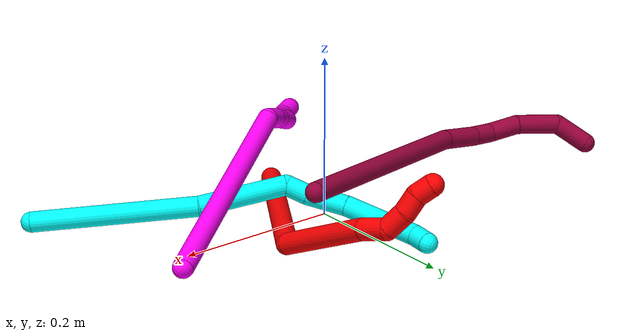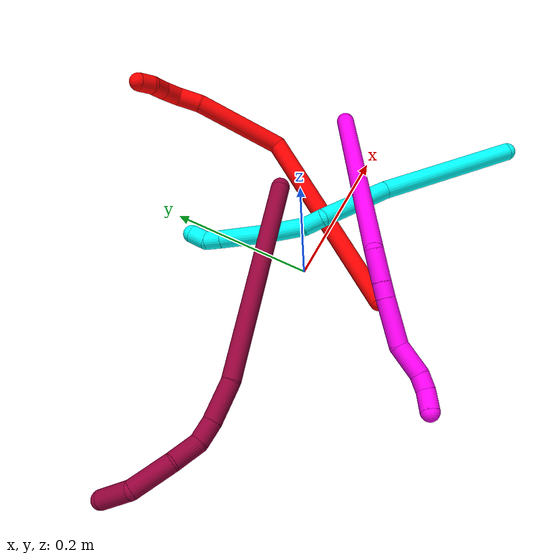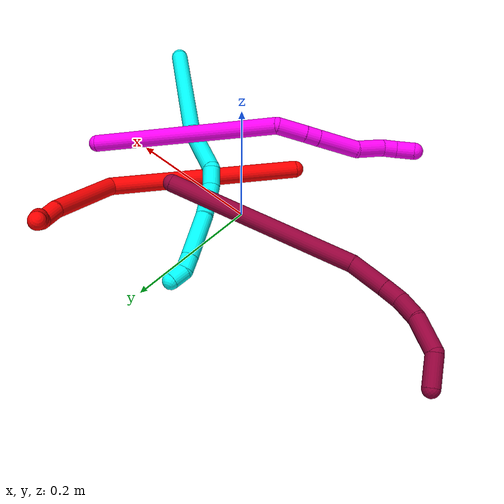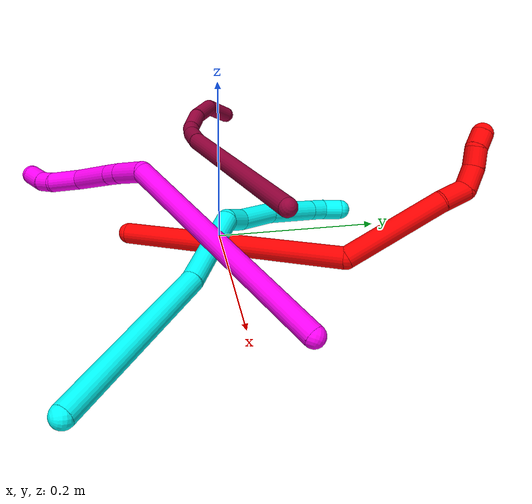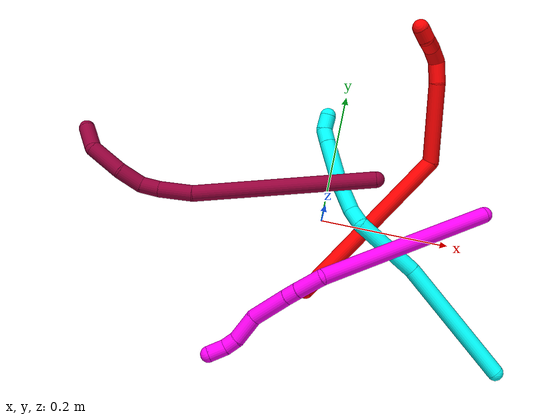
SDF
<sdf version="1.7">
 <world name="default">
  <model name="photoneo_s_sensor">
   <static>1</static>
   <pose>0 0 2 1.57079 1.57079 3.14159</pose>
   <link name="link">
    <inertial><mass>0.1</mass></inertial>
    <sensor name="sensor" type="depth">
     <update_rate>30</update_rate>
     <camera>
      <horizontal_fov>1.22</horizontal_fov>
      <image><width>1920</width><height>1200</height><format>B8G8R8</format></image>
      <clip><near>0.1</near><far>4</far></clip>
      <depth_camera><output>points</output></depth_camera>
     </camera>
     <plugin name="camera_plugin" filename="libgazebo_ros_depth_camera.so">
      <baseline>0.2</baseline>
      <alwaysOn>1</alwaysOn>
      <updateRate>0.0</updateRate>
      <cameraName>camera_ir</cameraName>
      <imageTopicName>/camera/color/image_raw</imageTopicName>
      <cameraInfoTopicName>/camera/color/camera_info</cameraInfoTopicName>
      <depthImageTopicName>/camera/depth/image_raw</depthImageTopicName>
      <depthImageCameraInfoTopicName>/camera/depth/camera_info</depthImageCameraInfoTopicName>
      <pointCloudTopicName>/camera/depth/points</pointCloudTopicName>
      <frameName>fr_optical</frameName>
      <pointCloudCutoff>0.1</pointCloudCutoff>
      <pointCloudCutoffMax>2.0</pointCloudCutoffMax>
      <distortionK1>0</distortionK1>
      <distortionK2>0</distortionK2>
      <distortionK3>0</distortionK3>
      <distortionT1>0</distortionT1>
      <distortionT2>0</distortionT2>
      <CxPrime>0</CxPrime>
      <Cx>0</Cx>
      <Cy>0</Cy>
      <focalLength>0</focalLength>
      <hackBaseline>0</hackBaseline>
     </plugin>
    </sensor>
   </link>
  </model>
  <model name="bin">
   <static>1</static>
   <link name="bottom">
    <collision name="collision-bottom">
     <pose>0 0 -0.01 0 -0 0</pose>
     <geometry><box><size>0.8 0.6 0.02</size></box></geometry>
     <surface>
      <friction><ode><mu>100</mu><mu2>100</mu2></ode></friction>
      <contact><collide_bitmask>65535</collide_bitmask></contact>
     </surface>
    </collision>
   </link>
   <link name="west_wall">
    <collision name="collision-west_wall">
     <pose>-0.41 0 0.1 0 -0 0</pose>
     <geometry><box><size>0.02 0.6 0.2</size></box></geometry>
     <surface>
      <friction><ode><mu>100</mu><mu2>100</mu2></ode></friction>
      <contact><collide_bitmask>65535</collide_bitmask></contact>
     </surface>
    </collision>
   </link>
   <link name="east_wall">
    <collision name="collision-east_wall">
     <pose>0.41 0 0.1 0 -0 0</pose>
     <geometry><box><size>0.02 0.6 0.2</size></box></geometry>
     <surface>
      <friction><ode><mu>100</mu><mu2>100</mu2></ode></friction>
      <contact><collide_bitmask>65535</collide_bitmask></contact>
     </surface>
    </collision>
   </link>
   <link name="south_wall">
    <collision name="collision-south_wall">
     <pose>0 -0.31 0.1 0 -0 0</pose>
     <geometry><box><size>0.8 0.02 0.2</size></box></geometry>
     <surface>
      <friction><ode><mu>100</mu><mu2>100</mu2></ode></friction>
      <contact><collide_bitmask>65535</collide_bitmask></contact>
     </surface>
    </collision>
   </link>
   <link name="north_wall">
    <collision name="collision-north_wall">
     <pose>0 0.31 0.1 0 -0 0</pose>
     <geometry><box><size>0.8 0.02 0.2</size></box></geometry>
     <surface>
      <friction><ode><mu>100</mu><mu2>100</mu2></ode></friction>
      <contact><collide_bitmask>65535</collide_bitmask></contact>
     </surface>
    </collision>
   </link>
  </model>
  <model name="2">
   <static>0</static>
   <link name="2">
    <collision name="collision-cylinder-e_1_1_4">
     <pose>0.056743 0.125308 -0.009512 -1.64656 0.424122 -0.456428</pose>
     <geometry><cylinder><radius>0.0125</radius><length>0.275771</length></cylinder></geometry>
     <surface>
      <friction><ode><mu>1.16</mu><mu2>1.16</mu2><slip1>0</slip1><slip2>0</slip2></ode></friction>
      <contact><ode><kp>1e+06</kp><kd>1</kd><max_vel>0</max_vel><min_depth>0.001</min_depth></ode></contact>
     </surface>
    </collision>
    <visual name="visual-cylinder-e_1_1_4">
     <pose>0.056743 0.125308 -0.009512 -1.64656 0.424122 -0.456428</pose>
     <geometry><cylinder><radius>0.0125</radius><length>0.275771</length></cylinder></geometry>
     <material><ambient>1 0 0 1</ambient></material>
    </visual>
    <collision name="collision-cylinder-e_2_4_5">
     <pose>0.109014 0.303296 0.012029 -1.03815 -0.072996 0.041718</pose>
     <geometry><cylinder><radius>0.0125</radius><length>0.122627</length></cylinder></geometry>
     <surface>
      <friction><ode><mu>1.16</mu><mu2>1.16</mu2><slip1>0</slip1><slip2>0</slip2></ode></friction>
      <contact><ode><kp>1e+06</kp><kd>1</kd><max_vel>0</max_vel><min_depth>0.001</min_depth></ode></contact>
     </surface>
    </collision>
    <visual name="visual-cylinder-e_2_4_5">
     <pose>0.109014 0.303296 0.012029 -1.03815 -0.072996 0.041718</pose>
     <geometry><cylinder><radius>0.0125</radius><length>0.122627</length></cylinder></geometry>
     <material><ambient>1 0 0 1</ambient></material>
    </visual>
    <collision name="collision-cylinder-e_3_5_6">
     <pose>0.100673 0.370098 0.049565 -1.14047 -0.244006 0.156939</pose>
     <geometry><cylinder><radius>0.0125</radius><length>0.032028</length></cylinder></geometry>
     <surface>
      <friction><ode><mu>1.16</mu><mu2>1.16</mu2><slip1>0</slip1><slip2>0</slip2></ode></friction>
      <contact><ode><kp>1e+06</kp><kd>1</kd><max_vel>0</max_vel><min_depth>0.001</min_depth></ode></contact>
     </surface>
    </collision>
    <visual name="visual-cylinder-e_3_5_6">
     <pose>0.100673 0.370098 0.049565 -1.14047 -0.244006 0.156939</pose>
     <geometry><cylinder><radius>0.0125</radius><length>0.032028</length></cylinder></geometry>
     <material><ambient>1 0 0 1</ambient></material>
    </visual>
    <collision name="collision-cylinder-e_4_6_7">
     <pose>0.094393 0.389488 0.068097 -0.412124 -0.181364 0.03801</pose>
     <geometry><cylinder><radius>0.0125</radius><length>0.026739</length></cylinder></geometry>
     <surface>
      <friction><ode><mu>1.16</mu><mu2>1.16</mu2><slip1>0</slip1><slip2>0</slip2></ode></friction>
      <contact><ode><kp>1e+06</kp><kd>1</kd><max_vel>0</max_vel><min_depth>0.001</min_depth></ode></contact>
     </surface>
    </collision>
    <visual name="visual-cylinder-e_4_6_7">
     <pose>0.094393 0.389488 0.068097 -0.412124 -0.181364 0.03801</pose>
     <geometry><cylinder><radius>0.0125</radius><length>0.026739</length></cylinder></geometry>
     <material><ambient>1 0 0 1</ambient></material>
    </visual>
    <collision name="collision-cylinder-e_5_7_8">
     <pose>0.090778 0.396566 0.091198 -0.16239 -0.107019 0.008717</pose>
     <geometry><cylinder><radius>0.0125</radius><length>0.022528</length></cylinder></geometry>
     <surface>
      <friction><ode><mu>1.16</mu><mu2>1.16</mu2><slip1>0</slip1><slip2>0</slip2></ode></friction>
      <contact><ode><kp>1e+06</kp><kd>1</kd><max_vel>0</max_vel><min_depth>0.001</min_depth></ode></contact>
     </surface>
    </collision>
    <visual name="visual-cylinder-e_5_7_8">
     <pose>0.090778 0.396566 0.091198 -0.16239 -0.107019 0.008717</pose>
     <geometry><cylinder><radius>0.0125</radius><length>0.022528</length></cylinder></geometry>
     <material><ambient>1 0 0 1</ambient></material>
    </visual>
    <collision name="collision-cylinder-e_6_8_2">
     <pose>0.086194 0.402821 0.110731 -0.482681 -0.339438 0.08431</pose>
     <geometry><cylinder><radius>0.0125</radius><length>0.020307</length></cylinder></geometry>
     <surface>
      <friction><ode><mu>1.16</mu><mu2>1.16</mu2><slip1>0</slip1><slip2>0</slip2></ode></friction>
      <contact><ode><kp>1e+06</kp><kd>1</kd><max_vel>0</max_vel><min_depth>0.001</min_depth></ode></contact>
     </surface>
    </collision>
    <visual name="visual-cylinder-e_6_8_2">
     <pose>0.086194 0.402821 0.110731 -0.482681 -0.339438 0.08431</pose>
     <geometry><cylinder><radius>0.0125</radius><length>0.020307</length></cylinder></geometry>
     <material><ambient>1 0 0 1</ambient></material>
    </visual>
    <collision name="collision-sphere-2">
     <pose>0.082814 0.407264 0.119211 0 -0 0</pose>
     <geometry><sphere><radius>0.0125</radius></sphere></geometry>
     <surface>
      <friction><ode><mu>1.16</mu><mu2>1.16</mu2><slip1>0</slip1><slip2>0</slip2></ode></friction>
      <contact><ode><kp>1e+06</kp><kd>1</kd><max_vel>0</max_vel><min_depth>0.001</min_depth></ode></contact>
     </surface>
    </collision>
    <visual name="visual-sphere-2">
     <pose>0.082814 0.407264 0.119211 0 -0 0</pose>
     <geometry><sphere><radius>0.0125</radius></sphere></geometry>
     <material><ambient>1 0 0 1</ambient></material>
    </visual>
    <collision name="collision-sphere-4">
     <pose>0.113486 0.250617 -0.019024 0 -0 0</pose>
     <geometry><sphere><radius>0.0125</radius></sphere></geometry>
     <surface>
      <friction><ode><mu>1.16</mu><mu2>1.16</mu2><slip1>0</slip1><slip2>0</slip2></ode></friction>
      <contact><ode><kp>1e+06</kp><kd>1</kd><max_vel>0</max_vel><min_depth>0.001</min_depth></ode></contact>
     </surface>
    </collision>
    <visual name="visual-sphere-4">
     <pose>0.113486 0.250617 -0.019024 0 -0 0</pose>
     <geometry><sphere><radius>0.0125</radius></sphere></geometry>
     <material><ambient>1 0 0 1</ambient></material>
    </visual>
    <collision name="collision-sphere-1">
     <geometry><sphere><radius>0.0125</radius></sphere></geometry>
     <surface>
      <friction><ode><mu>1.16</mu><mu2>1.16</mu2><slip1>0</slip1><slip2>0</slip2></ode></friction>
      <contact><ode><kp>1e+06</kp><kd>1</kd><max_vel>0</max_vel><min_depth>0.001</min_depth></ode></contact>
     </surface>
    </collision>
    <visual name="visual-sphere-1">
     <geometry><sphere><radius>0.0125</radius></sphere></geometry>
     <material><ambient>1 0 0 1</ambient></material>
    </visual>
    <collision name="collision-sphere-8">
     <pose>0.089575 0.398377 0.102251 0 -0 0</pose>
     <geometry><sphere><radius>0.0125</radius></sphere></geometry>
     <surface>
      <friction><ode><mu>1.16</mu><mu2>1.16</mu2><slip1>0</slip1><slip2>0</slip2></ode></friction>
      <contact><ode><kp>1e+06</kp><kd>1</kd><max_vel>0</max_vel><min_depth>0.001</min_depth></ode></contact>
     </surface>
    </collision>
    <visual name="visual-sphere-8">
     <pose>0.089575 0.398377 0.102251 0 -0 0</pose>
     <geometry><sphere><radius>0.0125</radius></sphere></geometry>
     <material><ambient>1 0 0 1</ambient></material>
    </visual>
    <collision name="collision-sphere-5">
     <pose>0.104542 0.355975 0.043082 0 -0 0</pose>
     <geometry><sphere><radius>0.0125</radius></sphere></geometry>
     <surface>
      <friction><ode><mu>1.16</mu><mu2>1.16</mu2><slip1>0</slip1><slip2>0</slip2></ode></friction>
      <contact><ode><kp>1e+06</kp><kd>1</kd><max_vel>0</max_vel><min_depth>0.001</min_depth></ode></contact>
     </surface>
    </collision>
    <visual name="visual-sphere-5">
     <pose>0.104542 0.355975 0.043082 0 -0 0</pose>
     <geometry><sphere><radius>0.0125</radius></sphere></geometry>
     <material><ambient>1 0 0 1</ambient></material>
    </visual>
    <collision name="collision-sphere-6">
     <pose>0.096804 0.38422 0.056047 0 -0 0</pose>
     <geometry><sphere><radius>0.0125</radius></sphere></geometry>
     <surface>
      <friction><ode><mu>1.16</mu><mu2>1.16</mu2><slip1>0</slip1><slip2>0</slip2></ode></friction>
      <contact><ode><kp>1e+06</kp><kd>1</kd><max_vel>0</max_vel><min_depth>0.001</min_depth></ode></contact>
     </surface>
    </collision>
    <visual name="visual-sphere-6">
     <pose>0.096804 0.38422 0.056047 0 -0 0</pose>
     <geometry><sphere><radius>0.0125</radius></sphere></geometry>
     <material><ambient>1 0 0 1</ambient></material>
    </visual>
    <collision name="collision-sphere-7">
     <pose>0.091981 0.394755 0.080146 0 -0 0</pose>
     <geometry><sphere><radius>0.0125</radius></sphere></geometry>
     <surface>
      <friction><ode><mu>1.16</mu><mu2>1.16</mu2><slip1>0</slip1><slip2>0</slip2></ode></friction>
      <contact><ode><kp>1e+06</kp><kd>1</kd><max_vel>0</max_vel><min_depth>0.001</min_depth></ode></contact>
     </surface>
    </collision>
    <visual name="visual-sphere-7">
     <pose>0.091981 0.394755 0.080146 0 -0 0</pose>
     <geometry><sphere><radius>0.0125</radius></sphere></geometry>
     <material><ambient>1 0 0 1</ambient></material>
    </visual>
    <inertial>
     <pose>0.07712 0.222261 0.013127 0 -0 0</pose>
     <mass>0.5</mass>
     <inertia>
      <ixx>0.000914</ixx>
      <ixy>0</ixy>
      <ixz>0</ixz>
      <iyy>-0.00038</iyy>
      <iyz>0</iyz>
      <izz>-0.00244</izz>
     </inertia>
    </inertial>
   </link>
   <pose>-0.002339 -0.112538 0.012364 -0.01159 -0.452595 -0.152545</pose>
  </model>
  <model name="3">
   <static>0</static>
   <link name="3">
    <collision name="collision-cylinder-e_1_1_4">
     <pose>-0.049425 0.033452 -0.081681 -2.75289 -0.510453 1.84897</pose>
     <geometry><cylinder><radius>0.0125</radius><length>0.202323</length></cylinder></geometry>
     <surface>
      <friction><ode><mu>1.16</mu><mu2>1.16</mu2><slip1>0</slip1><slip2>0</slip2></ode></friction>
      <contact><ode><kp>1e+06</kp><kd>1</kd><max_vel>0</max_vel><min_depth>0.001</min_depth></ode></contact>
     </surface>
    </collision>
    <visual name="visual-cylinder-e_1_1_4">
     <pose>-0.049425 0.033452 -0.081681 -2.75289 -0.510453 1.84897</pose>
     <geometry><cylinder><radius>0.0125</radius><length>0.202323</length></cylinder></geometry>
     <material><ambient>0.003922 1 0.996078 1</ambient></material>
    </visual>
    <collision name="collision-cylinder-e_2_4_5">
     <pose>-0.131703 0.087888 -0.199571 -2.61635 -0.665549 1.81948</pose>
     <geometry><cylinder><radius>0.0125</radius><length>0.106409</length></cylinder></geometry>
     <surface>
      <friction><ode><mu>1.16</mu><mu2>1.16</mu2><slip1>0</slip1><slip2>0</slip2></ode></friction>
      <contact><ode><kp>1e+06</kp><kd>1</kd><max_vel>0</max_vel><min_depth>0.001</min_depth></ode></contact>
     </surface>
    </collision>
    <visual name="visual-cylinder-e_2_4_5">
     <pose>-0.131703 0.087888 -0.199571 -2.61635 -0.665549 1.81948</pose>
     <geometry><cylinder><radius>0.0125</radius><length>0.106409</length></cylinder></geometry>
     <material><ambient>0.003922 1 0.996078 1</ambient></material>
    </visual>
    <collision name="collision-cylinder-e_3_5_6">
     <pose>-0.169592 0.10661 -0.248463 2.96508 -0.372579 -2.26371</pose>
     <geometry><cylinder><radius>0.0125</radius><length>0.027665</length></cylinder></geometry>
     <surface>
      <friction><ode><mu>1.16</mu><mu2>1.16</mu2><slip1>0</slip1><slip2>0</slip2></ode></friction>
      <contact><ode><kp>1e+06</kp><kd>1</kd><max_vel>0</max_vel><min_depth>0.001</min_depth></ode></contact>
     </surface>
    </collision>
    <visual name="visual-cylinder-e_3_5_6">
     <pose>-0.169592 0.10661 -0.248463 2.96508 -0.372579 -2.26371</pose>
     <geometry><cylinder><radius>0.0125</radius><length>0.027665</length></cylinder></geometry>
     <material><ambient>0.003922 1 0.996078 1</ambient></material>
    </visual>
    <collision name="collision-cylinder-e_4_6_7">
     <pose>-0.180015 0.106351 -0.285437 -3.05929 -0.217568 2.42054</pose>
     <geometry><cylinder><radius>0.0125</radius><length>0.049923</length></cylinder></geometry>
     <surface>
      <friction><ode><mu>1.16</mu><mu2>1.16</mu2><slip1>0</slip1><slip2>0</slip2></ode></friction>
      <contact><ode><kp>1e+06</kp><kd>1</kd><max_vel>0</max_vel><min_depth>0.001</min_depth></ode></contact>
     </surface>
    </collision>
    <visual name="visual-cylinder-e_4_6_7">
     <pose>-0.180015 0.106351 -0.285437 -3.05929 -0.217568 2.42054</pose>
     <geometry><cylinder><radius>0.0125</radius><length>0.049923</length></cylinder></geometry>
     <material><ambient>0.003922 1 0.996078 1</ambient></material>
    </visual>
    <collision name="collision-cylinder-e_5_7_8">
     <pose>-0.18876 0.108485 -0.343318 -3.13771 -0.099592 3.06374</pose>
     <geometry><cylinder><radius>0.0125</radius><length>0.067515</length></cylinder></geometry>
     <surface>
      <friction><ode><mu>1.16</mu><mu2>1.16</mu2><slip1>0</slip1><slip2>0</slip2></ode></friction>
      <contact><ode><kp>1e+06</kp><kd>1</kd><max_vel>0</max_vel><min_depth>0.001</min_depth></ode></contact>
     </surface>
    </collision>
    <visual name="visual-cylinder-e_5_7_8">
     <pose>-0.18876 0.108485 -0.343318 -3.13771 -0.099592 3.06374</pose>
     <geometry><cylinder><radius>0.0125</radius><length>0.067515</length></cylinder></geometry>
     <material><ambient>0.003922 1 0.996078 1</ambient></material>
    </visual>
    <collision name="collision-cylinder-e_6_8_9">
     <pose>-0.192982 0.108764 -0.388132 -3.12836 -0.077013 2.8015</pose>
     <geometry><cylinder><radius>0.0125</radius><length>0.022516</length></cylinder></geometry>
     <surface>
      <friction><ode><mu>1.16</mu><mu2>1.16</mu2><slip1>0</slip1><slip2>0</slip2></ode></friction>
      <contact><ode><kp>1e+06</kp><kd>1</kd><max_vel>0</max_vel><min_depth>0.001</min_depth></ode></contact>
     </surface>
    </collision>
    <visual name="visual-cylinder-e_6_8_9">
     <pose>-0.192982 0.108764 -0.388132 -3.12836 -0.077013 2.8015</pose>
     <geometry><cylinder><radius>0.0125</radius><length>0.022516</length></cylinder></geometry>
     <material><ambient>0.003922 1 0.996078 1</ambient></material>
    </visual>
    <collision name="collision-cylinder-e_7_9_2">
     <pose>-0.189046 0.110507 -0.410042 -2.99347 0.418234 -2.46891</pose>
     <geometry><cylinder><radius>0.0125</radius><length>0.023648</length></cylinder></geometry>
     <surface>
      <friction><ode><mu>1.16</mu><mu2>1.16</mu2><slip1>0</slip1><slip2>0</slip2></ode></friction>
      <contact><ode><kp>1e+06</kp><kd>1</kd><max_vel>0</max_vel><min_depth>0.001</min_depth></ode></contact>
     </surface>
    </collision>
    <visual name="visual-cylinder-e_7_9_2">
     <pose>-0.189046 0.110507 -0.410042 -2.99347 0.418234 -2.46891</pose>
     <geometry><cylinder><radius>0.0125</radius><length>0.023648</length></cylinder></geometry>
     <material><ambient>0.003922 1 0.996078 1</ambient></material>
    </visual>
    <collision name="collision-sphere-2">
     <pose>-0.184244 0.112102 -0.420728 0 -0 0</pose>
     <geometry><sphere><radius>0.0125</radius></sphere></geometry>
     <surface>
      <friction><ode><mu>1.16</mu><mu2>1.16</mu2><slip1>0</slip1><slip2>0</slip2></ode></friction>
      <contact><ode><kp>1e+06</kp><kd>1</kd><max_vel>0</max_vel><min_depth>0.001</min_depth></ode></contact>
     </surface>
    </collision>
    <visual name="visual-sphere-2">
     <pose>-0.184244 0.112102 -0.420728 0 -0 0</pose>
     <geometry><sphere><radius>0.0125</radius></sphere></geometry>
     <material><ambient>0.003922 1 0.996078 1</ambient></material>
    </visual>
    <collision name="collision-sphere-9">
     <pose>-0.193849 0.108912 -0.399355 0 -0 0</pose>
     <geometry><sphere><radius>0.0125</radius></sphere></geometry>
     <surface>
      <friction><ode><mu>1.16</mu><mu2>1.16</mu2><slip1>0</slip1><slip2>0</slip2></ode></friction>
      <contact><ode><kp>1e+06</kp><kd>1</kd><max_vel>0</max_vel><min_depth>0.001</min_depth></ode></contact>
     </surface>
    </collision>
    <visual name="visual-sphere-9">
     <pose>-0.193849 0.108912 -0.399355 0 -0 0</pose>
     <geometry><sphere><radius>0.0125</radius></sphere></geometry>
     <material><ambient>0.003922 1 0.996078 1</ambient></material>
    </visual>
    <collision name="collision-sphere-4">
     <pose>-0.09885 0.066903 -0.163363 0 -0 0</pose>
     <geometry><sphere><radius>0.0125</radius></sphere></geometry>
     <surface>
      <friction><ode><mu>1.16</mu><mu2>1.16</mu2><slip1>0</slip1><slip2>0</slip2></ode></friction>
      <contact><ode><kp>1e+06</kp><kd>1</kd><max_vel>0</max_vel><min_depth>0.001</min_depth></ode></contact>
     </surface>
    </collision>
    <visual name="visual-sphere-4">
     <pose>-0.09885 0.066903 -0.163363 0 -0 0</pose>
     <geometry><sphere><radius>0.0125</radius></sphere></geometry>
     <material><ambient>0.003922 1 0.996078 1</ambient></material>
    </visual>
    <collision name="collision-sphere-1">
     <geometry><sphere><radius>0.0125</radius></sphere></geometry>
     <surface>
      <friction><ode><mu>1.16</mu><mu2>1.16</mu2><slip1>0</slip1><slip2>0</slip2></ode></friction>
      <contact><ode><kp>1e+06</kp><kd>1</kd><max_vel>0</max_vel><min_depth>0.001</min_depth></ode></contact>
     </surface>
    </collision>
    <visual name="visual-sphere-1">
     <geometry><sphere><radius>0.0125</radius></sphere></geometry>
     <material><ambient>0.003922 1 0.996078 1</ambient></material>
    </visual>
    <collision name="collision-sphere-8">
     <pose>-0.192116 0.108615 -0.376908 0 -0 0</pose>
     <geometry><sphere><radius>0.0125</radius></sphere></geometry>
     <surface>
      <friction><ode><mu>1.16</mu><mu2>1.16</mu2><slip1>0</slip1><slip2>0</slip2></ode></friction>
      <contact><ode><kp>1e+06</kp><kd>1</kd><max_vel>0</max_vel><min_depth>0.001</min_depth></ode></contact>
     </surface>
    </collision>
    <visual name="visual-sphere-8">
     <pose>-0.192116 0.108615 -0.376908 0 -0 0</pose>
     <geometry><sphere><radius>0.0125</radius></sphere></geometry>
     <material><ambient>0.003922 1 0.996078 1</ambient></material>
    </visual>
    <collision name="collision-sphere-5">
     <pose>-0.164556 0.108872 -0.23578 0 -0 0</pose>
     <geometry><sphere><radius>0.0125</radius></sphere></geometry>
     <surface>
      <friction><ode><mu>1.16</mu><mu2>1.16</mu2><slip1>0</slip1><slip2>0</slip2></ode></friction>
      <contact><ode><kp>1e+06</kp><kd>1</kd><max_vel>0</max_vel><min_depth>0.001</min_depth></ode></contact>
     </surface>
    </collision>
    <visual name="visual-sphere-5">
     <pose>-0.164556 0.108872 -0.23578 0 -0 0</pose>
     <geometry><sphere><radius>0.0125</radius></sphere></geometry>
     <material><ambient>0.003922 1 0.996078 1</ambient></material>
    </visual>
    <collision name="collision-sphere-6">
     <pose>-0.174627 0.104347 -0.261147 0 -0 0</pose>
     <geometry><sphere><radius>0.0125</radius></sphere></geometry>
     <surface>
      <friction><ode><mu>1.16</mu><mu2>1.16</mu2><slip1>0</slip1><slip2>0</slip2></ode></friction>
      <contact><ode><kp>1e+06</kp><kd>1</kd><max_vel>0</max_vel><min_depth>0.001</min_depth></ode></contact>
     </surface>
    </collision>
    <visual name="visual-sphere-6">
     <pose>-0.174627 0.104347 -0.261147 0 -0 0</pose>
     <geometry><sphere><radius>0.0125</radius></sphere></geometry>
     <material><ambient>0.003922 1 0.996078 1</ambient></material>
    </visual>
    <collision name="collision-sphere-7">
     <pose>-0.185403 0.108355 -0.309728 0 -0 0</pose>
     <geometry><sphere><radius>0.0125</radius></sphere></geometry>
     <surface>
      <friction><ode><mu>1.16</mu><mu2>1.16</mu2><slip1>0</slip1><slip2>0</slip2></ode></friction>
      <contact><ode><kp>1e+06</kp><kd>1</kd><max_vel>0</max_vel><min_depth>0.001</min_depth></ode></contact>
     </surface>
    </collision>
    <visual name="visual-sphere-7">
     <pose>-0.185403 0.108355 -0.309728 0 -0 0</pose>
     <geometry><sphere><radius>0.0125</radius></sphere></geometry>
     <material><ambient>0.003922 1 0.996078 1</ambient></material>
    </visual>
    <inertial>
     <pose>-0.118506 0.073531 -0.201002 0 -0 0</pose>
     <mass>0.5</mass>
     <inertia>
      <ixx>0.000429</ixx>
      <ixy>0</ixy>
      <ixz>0</ixz>
      <iyy>0.00108</iyy>
      <iyz>0</iyz>
      <izz>0.000106</izz>
     </inertia>
    </inertial>
   </link>
   <pose>0.306596 -0.175963 0.011497 1.33489 -0.05259 0.370109</pose>
  </model>
  <model name="8">
   <static>0</static>
   <link name="8">
    <collision name="collision-cylinder-e_1_1_4">
     <pose>-0.047113 -0.072601 -0.109341 2.55545 -0.344631 -1.0463</pose>
     <geometry><cylinder><radius>0.0125</radius><length>0.278897</length></cylinder></geometry>
     <surface>
      <friction><ode><mu>1.16</mu><mu2>1.16</mu2><slip1>0</slip1><slip2>0</slip2></ode></friction>
      <contact><ode><kp>1e+06</kp><kd>1</kd><max_vel>0</max_vel><min_depth>0.001</min_depth></ode></contact>
     </surface>
    </collision>
    <visual name="visual-cylinder-e_1_1_4">
     <pose>-0.047113 -0.072601 -0.109341 2.55545 -0.344631 -1.0463</pose>
     <geometry><cylinder><radius>0.0125</radius><length>0.278897</length></cylinder></geometry>
     <material><ambient>0.584314 0 0.227451 1</ambient></material>
    </visual>
    <collision name="collision-cylinder-e_2_4_5">
     <pose>-0.106692 -0.154175 -0.240489 2.75122 -0.486323 -1.7958</pose>
     <geometry><cylinder><radius>0.0125</radius><length>0.053348</length></cylinder></geometry>
     <surface>
      <friction><ode><mu>1.16</mu><mu2>1.16</mu2><slip1>0</slip1><slip2>0</slip2></ode></friction>
      <contact><ode><kp>1e+06</kp><kd>1</kd><max_vel>0</max_vel><min_depth>0.001</min_depth></ode></contact>
     </surface>
    </collision>
    <visual name="visual-cylinder-e_2_4_5">
     <pose>-0.106692 -0.154175 -0.240489 2.75122 -0.486323 -1.7958</pose>
     <geometry><cylinder><radius>0.0125</radius><length>0.053348</length></cylinder></geometry>
     <material><ambient>0.584314 0 0.227451 1</ambient></material>
    </visual>
    <collision name="collision-cylinder-e_3_5_6">
     <pose>-0.127814 -0.168114 -0.272861 2.70224 -0.637994 -1.95266</pose>
     <geometry><cylinder><radius>0.0125</radius><length>0.029065</length></cylinder></geometry>
     <surface>
      <friction><ode><mu>1.16</mu><mu2>1.16</mu2><slip1>0</slip1><slip2>0</slip2></ode></friction>
      <contact><ode><kp>1e+06</kp><kd>1</kd><max_vel>0</max_vel><min_depth>0.001</min_depth></ode></contact>
     </surface>
    </collision>
    <visual name="visual-cylinder-e_3_5_6">
     <pose>-0.127814 -0.168114 -0.272861 2.70224 -0.637994 -1.95266</pose>
     <geometry><cylinder><radius>0.0125</radius><length>0.029065</length></cylinder></geometry>
     <material><ambient>0.584314 0 0.227451 1</ambient></material>
    </visual>
    <collision name="collision-cylinder-e_4_6_7">
     <pose>-0.153075 -0.17802 -0.292213 2.62941 -1.02519 -2.27063</pose>
     <geometry><cylinder><radius>0.0125</radius><length>0.038853</length></cylinder></geometry>
     <surface>
      <friction><ode><mu>1.16</mu><mu2>1.16</mu2><slip1>0</slip1><slip2>0</slip2></ode></friction>
      <contact><ode><kp>1e+06</kp><kd>1</kd><max_vel>0</max_vel><min_depth>0.001</min_depth></ode></contact>
     </surface>
    </collision>
    <visual name="visual-cylinder-e_4_6_7">
     <pose>-0.153075 -0.17802 -0.292213 2.62941 -1.02519 -2.27063</pose>
     <geometry><cylinder><radius>0.0125</radius><length>0.038853</length></cylinder></geometry>
     <material><ambient>0.584314 0 0.227451 1</ambient></material>
    </visual>
    <collision name="collision-cylinder-e_5_7_8">
     <pose>-0.192403 -0.183208 -0.316441 3.12556 -0.973862 -3.11131</pose>
     <geometry><cylinder><radius>0.0125</radius><length>0.054945</length></cylinder></geometry>
     <surface>
      <friction><ode><mu>1.16</mu><mu2>1.16</mu2><slip1>0</slip1><slip2>0</slip2></ode></friction>
      <contact><ode><kp>1e+06</kp><kd>1</kd><max_vel>0</max_vel><min_depth>0.001</min_depth></ode></contact>
     </surface>
    </collision>
    <visual name="visual-cylinder-e_5_7_8">
     <pose>-0.192403 -0.183208 -0.316441 3.12556 -0.973862 -3.11131</pose>
     <geometry><cylinder><radius>0.0125</radius><length>0.054945</length></cylinder></geometry>
     <material><ambient>0.584314 0 0.227451 1</ambient></material>
    </visual>
    <collision name="collision-cylinder-e_6_8_2">
     <pose>-0.228593 -0.170175 -0.343966 -2.30905 -0.643568 1.29218</pose>
     <geometry><cylinder><radius>0.0125</radius><length>0.044893</length></cylinder></geometry>
     <surface>
      <friction><ode><mu>1.16</mu><mu2>1.16</mu2><slip1>0</slip1><slip2>0</slip2></ode></friction>
      <contact><ode><kp>1e+06</kp><kd>1</kd><max_vel>0</max_vel><min_depth>0.001</min_depth></ode></contact>
     </surface>
    </collision>
    <visual name="visual-cylinder-e_6_8_2">
     <pose>-0.228593 -0.170175 -0.343966 -2.30905 -0.643568 1.29218</pose>
     <geometry><cylinder><radius>0.0125</radius><length>0.044893</length></cylinder></geometry>
     <material><ambient>0.584314 0 0.227451 1</ambient></material>
    </visual>
    <collision name="collision-sphere-2">
     <pose>-0.242062 -0.156894 -0.356051 0 -0 0</pose>
     <geometry><sphere><radius>0.0125</radius></sphere></geometry>
     <surface>
      <friction><ode><mu>1.16</mu><mu2>1.16</mu2><slip1>0</slip1><slip2>0</slip2></ode></friction>
      <contact><ode><kp>1e+06</kp><kd>1</kd><max_vel>0</max_vel><min_depth>0.001</min_depth></ode></contact>
     </surface>
    </collision>
    <visual name="visual-sphere-2">
     <pose>-0.242062 -0.156894 -0.356051 0 -0 0</pose>
     <geometry><sphere><radius>0.0125</radius></sphere></geometry>
     <material><ambient>0.584314 0 0.227451 1</ambient></material>
    </visual>
    <collision name="collision-sphere-4">
     <pose>-0.094225 -0.145202 -0.218682 0 -0 0</pose>
     <geometry><sphere><radius>0.0125</radius></sphere></geometry>
     <surface>
      <friction><ode><mu>1.16</mu><mu2>1.16</mu2><slip1>0</slip1><slip2>0</slip2></ode></friction>
      <contact><ode><kp>1e+06</kp><kd>1</kd><max_vel>0</max_vel><min_depth>0.001</min_depth></ode></contact>
     </surface>
    </collision>
    <visual name="visual-sphere-4">
     <pose>-0.094225 -0.145202 -0.218682 0 -0 0</pose>
     <geometry><sphere><radius>0.0125</radius></sphere></geometry>
     <material><ambient>0.584314 0 0.227451 1</ambient></material>
    </visual>
    <collision name="collision-sphere-1">
     <geometry><sphere><radius>0.0125</radius></sphere></geometry>
     <surface>
      <friction><ode><mu>1.16</mu><mu2>1.16</mu2><slip1>0</slip1><slip2>0</slip2></ode></friction>
      <contact><ode><kp>1e+06</kp><kd>1</kd><max_vel>0</max_vel><min_depth>0.001</min_depth></ode></contact>
     </surface>
    </collision>
    <visual name="visual-sphere-1">
     <geometry><sphere><radius>0.0125</radius></sphere></geometry>
     <material><ambient>0.584314 0 0.227451 1</ambient></material>
    </visual>
    <collision name="collision-sphere-8">
     <pose>-0.215124 -0.183456 -0.331882 0 -0 0</pose>
     <geometry><sphere><radius>0.0125</radius></sphere></geometry>
     <surface>
      <friction><ode><mu>1.16</mu><mu2>1.16</mu2><slip1>0</slip1><slip2>0</slip2></ode></friction>
      <contact><ode><kp>1e+06</kp><kd>1</kd><max_vel>0</max_vel><min_depth>0.001</min_depth></ode></contact>
     </surface>
    </collision>
    <visual name="visual-sphere-8">
     <pose>-0.215124 -0.183456 -0.331882 0 -0 0</pose>
     <geometry><sphere><radius>0.0125</radius></sphere></geometry>
     <material><ambient>0.584314 0 0.227451 1</ambient></material>
    </visual>
    <collision name="collision-sphere-5">
     <pose>-0.119159 -0.163149 -0.262296 0 -0 0</pose>
     <geometry><sphere><radius>0.0125</radius></sphere></geometry>
     <surface>
      <friction><ode><mu>1.16</mu><mu2>1.16</mu2><slip1>0</slip1><slip2>0</slip2></ode></friction>
      <contact><ode><kp>1e+06</kp><kd>1</kd><max_vel>0</max_vel><min_depth>0.001</min_depth></ode></contact>
     </surface>
    </collision>
    <visual name="visual-sphere-5">
     <pose>-0.119159 -0.163149 -0.262296 0 -0 0</pose>
     <geometry><sphere><radius>0.0125</radius></sphere></geometry>
     <material><ambient>0.584314 0 0.227451 1</ambient></material>
    </visual>
    <collision name="collision-sphere-6">
     <pose>-0.136469 -0.17308 -0.283426 0 -0 0</pose>
     <geometry><sphere><radius>0.0125</radius></sphere></geometry>
     <surface>
      <friction><ode><mu>1.16</mu><mu2>1.16</mu2><slip1>0</slip1><slip2>0</slip2></ode></friction>
      <contact><ode><kp>1e+06</kp><kd>1</kd><max_vel>0</max_vel><min_depth>0.001</min_depth></ode></contact>
     </surface>
    </collision>
    <visual name="visual-sphere-6">
     <pose>-0.136469 -0.17308 -0.283426 0 -0 0</pose>
     <geometry><sphere><radius>0.0125</radius></sphere></geometry>
     <material><ambient>0.584314 0 0.227451 1</ambient></material>
    </visual>
    <collision name="collision-sphere-7">
     <pose>-0.169681 -0.182961 -0.301001 0 -0 0</pose>
     <geometry><sphere><radius>0.0125</radius></sphere></geometry>
     <surface>
      <friction><ode><mu>1.16</mu><mu2>1.16</mu2><slip1>0</slip1><slip2>0</slip2></ode></friction>
      <contact><ode><kp>1e+06</kp><kd>1</kd><max_vel>0</max_vel><min_depth>0.001</min_depth></ode></contact>
     </surface>
    </collision>
    <visual name="visual-sphere-7">
     <pose>-0.169681 -0.182961 -0.301001 0 -0 0</pose>
     <geometry><sphere><radius>0.0125</radius></sphere></geometry>
     <material><ambient>0.584314 0 0.227451 1</ambient></material>
    </visual>
    <inertial>
     <pose>-0.098655 -0.115964 -0.190873 0 -0 0</pose>
     <mass>0.5</mass>
     <inertia>
      <ixx>-0.000667</ixx>
      <ixy>0</ixy>
      <ixz>0</ixz>
      <iyy>-0.001938</iyy>
      <iyz>0</iyz>
      <izz>0.001569</izz>
     </inertia>
    </inertial>
   </link>
   <pose>0.068256 0.070191 0.068909 -0.75173 0.398901 -0.891993</pose>
  </model>
  <model name="10">
   <static>0</static>
   <link name="10">
    <collision name="collision-cylinder-e_1_1_4">
     <pose>-0.114486 -0.05279 -0.066133 2.46792 -0.934298 -1.92785</pose>
     <geometry><cylinder><radius>0.0125</radius><length>0.284727</length></cylinder></geometry>
     <surface>
      <friction><ode><mu>1.16</mu><mu2>1.16</mu2><slip1>0</slip1><slip2>0</slip2></ode></friction>
      <contact><ode><kp>1e+06</kp><kd>1</kd><max_vel>0</max_vel><min_depth>0.001</min_depth></ode></contact>
     </surface>
    </collision>
    <visual name="visual-cylinder-e_1_1_4">
     <pose>-0.114486 -0.05279 -0.066133 2.46792 -0.934298 -1.92785</pose>
     <geometry><cylinder><radius>0.0125</radius><length>0.284727</length></cylinder></geometry>
     <material><ambient>1 0 0.964706 1</ambient></material>
    </visual>
    <collision name="collision-cylinder-e_2_4_5">
     <pose>-0.243601 -0.121154 -0.131581 1.52692 -0.753619 -0.724064</pose>
     <geometry><cylinder><radius>0.0125</radius><length>0.042755</length></cylinder></geometry>
     <surface>
      <friction><ode><mu>1.16</mu><mu2>1.16</mu2><slip1>0</slip1><slip2>0</slip2></ode></friction>
      <contact><ode><kp>1e+06</kp><kd>1</kd><max_vel>0</max_vel><min_depth>0.001</min_depth></ode></contact>
     </surface>
    </collision>
    <visual name="visual-cylinder-e_2_4_5">
     <pose>-0.243601 -0.121154 -0.131581 1.52692 -0.753619 -0.724064</pose>
     <geometry><cylinder><radius>0.0125</radius><length>0.042755</length></cylinder></geometry>
     <material><ambient>1 0 0.964706 1</ambient></material>
    </visual>
    <collision name="collision-cylinder-e_3_5_6">
     <pose>-0.265097 -0.144191 -0.130198 1.47729 -0.741719 -0.680632</pose>
     <geometry><cylinder><radius>0.0125</radius><length>0.020331</length></cylinder></geometry>
     <surface>
      <friction><ode><mu>1.16</mu><mu2>1.16</mu2><slip1>0</slip1><slip2>0</slip2></ode></friction>
      <contact><ode><kp>1e+06</kp><kd>1</kd><max_vel>0</max_vel><min_depth>0.001</min_depth></ode></contact>
     </surface>
    </collision>
    <visual name="visual-cylinder-e_3_5_6">
     <pose>-0.265097 -0.144191 -0.130198 1.47729 -0.741719 -0.680632</pose>
     <geometry><cylinder><radius>0.0125</radius><length>0.020331</length></cylinder></geometry>
     <material><ambient>1 0 0.964706 1</ambient></material>
    </visual>
    <collision name="collision-cylinder-e_4_6_7">
     <pose>-0.29276 -0.173714 -0.126511 1.43622 -0.751365 -0.663733</pose>
     <geometry><cylinder><radius>0.0125</radius><length>0.060929</length></cylinder></geometry>
     <surface>
      <friction><ode><mu>1.16</mu><mu2>1.16</mu2><slip1>0</slip1><slip2>0</slip2></ode></friction>
      <contact><ode><kp>1e+06</kp><kd>1</kd><max_vel>0</max_vel><min_depth>0.001</min_depth></ode></contact>
     </surface>
    </collision>
    <visual name="visual-cylinder-e_4_6_7">
     <pose>-0.29276 -0.173714 -0.126511 1.43622 -0.751365 -0.663733</pose>
     <geometry><cylinder><radius>0.0125</radius><length>0.060929</length></cylinder></geometry>
     <material><ambient>1 0 0.964706 1</ambient></material>
    </visual>
    <collision name="collision-cylinder-e_5_7_8">
     <pose>-0.331784 -0.205417 -0.118101 1.05847 -1.02529 -0.636044</pose>
     <geometry><cylinder><radius>0.0125</radius><length>0.042644</length></cylinder></geometry>
     <surface>
      <friction><ode><mu>1.16</mu><mu2>1.16</mu2><slip1>0</slip1><slip2>0</slip2></ode></friction>
      <contact><ode><kp>1e+06</kp><kd>1</kd><max_vel>0</max_vel><min_depth>0.001</min_depth></ode></contact>
     </surface>
    </collision>
    <visual name="visual-cylinder-e_5_7_8">
     <pose>-0.331784 -0.205417 -0.118101 1.05847 -1.02529 -0.636044</pose>
     <geometry><cylinder><radius>0.0125</radius><length>0.042644</length></cylinder></geometry>
     <material><ambient>1 0 0.964706 1</ambient></material>
    </visual>
    <collision name="collision-cylinder-e_6_8_9">
     <pose>-0.3585 -0.221482 -0.112505 1.5439 -0.922905 -0.901632</pose>
     <geometry><cylinder><radius>0.0125</radius><length>0.021291</length></cylinder></geometry>
     <surface>
      <friction><ode><mu>1.16</mu><mu2>1.16</mu2><slip1>0</slip1><slip2>0</slip2></ode></friction>
      <contact><ode><kp>1e+06</kp><kd>1</kd><max_vel>0</max_vel><min_depth>0.001</min_depth></ode></contact>
     </surface>
    </collision>
    <visual name="visual-cylinder-e_6_8_9">
     <pose>-0.3585 -0.221482 -0.112505 1.5439 -0.922905 -0.901632</pose>
     <geometry><cylinder><radius>0.0125</radius><length>0.021291</length></cylinder></geometry>
     <material><ambient>1 0 0.964706 1</ambient></material>
    </visual>
    <collision name="collision-cylinder-e_7_9_2">
     <pose>-0.377526 -0.235702 -0.116174 2.0286 -0.881073 -1.297</pose>
     <geometry><cylinder><radius>0.0125</radius><length>0.027322</length></cylinder></geometry>
     <surface>
      <friction><ode><mu>1.16</mu><mu2>1.16</mu2><slip1>0</slip1><slip2>0</slip2></ode></friction>
      <contact><ode><kp>1e+06</kp><kd>1</kd><max_vel>0</max_vel><min_depth>0.001</min_depth></ode></contact>
     </surface>
    </collision>
    <visual name="visual-cylinder-e_7_9_2">
     <pose>-0.377526 -0.235702 -0.116174 2.0286 -0.881073 -1.297</pose>
     <geometry><cylinder><radius>0.0125</radius><length>0.027322</length></cylinder></geometry>
     <material><ambient>1 0 0.964706 1</ambient></material>
    </visual>
    <collision name="collision-sphere-2">
     <pose>-0.388065 -0.2435 -0.120016 0 -0 0</pose>
     <geometry><sphere><radius>0.0125</radius></sphere></geometry>
     <surface>
      <friction><ode><mu>1.16</mu><mu2>1.16</mu2><slip1>0</slip1><slip2>0</slip2></ode></friction>
      <contact><ode><kp>1e+06</kp><kd>1</kd><max_vel>0</max_vel><min_depth>0.001</min_depth></ode></contact>
     </surface>
    </collision>
    <visual name="visual-sphere-2">
     <pose>-0.388065 -0.2435 -0.120016 0 -0 0</pose>
     <geometry><sphere><radius>0.0125</radius></sphere></geometry>
     <material><ambient>1 0 0.964706 1</ambient></material>
    </visual>
    <collision name="collision-sphere-9">
     <pose>-0.366988 -0.227905 -0.112332 0 -0 0</pose>
     <geometry><sphere><radius>0.0125</radius></sphere></geometry>
     <surface>
      <friction><ode><mu>1.16</mu><mu2>1.16</mu2><slip1>0</slip1><slip2>0</slip2></ode></friction>
      <contact><ode><kp>1e+06</kp><kd>1</kd><max_vel>0</max_vel><min_depth>0.001</min_depth></ode></contact>
     </surface>
    </collision>
    <visual name="visual-sphere-9">
     <pose>-0.366988 -0.227905 -0.112332 0 -0 0</pose>
     <geometry><sphere><radius>0.0125</radius></sphere></geometry>
     <material><ambient>1 0 0.964706 1</ambient></material>
    </visual>
    <collision name="collision-sphere-4">
     <pose>-0.228973 -0.10558 -0.132265 0 -0 0</pose>
     <geometry><sphere><radius>0.0125</radius></sphere></geometry>
     <surface>
      <friction><ode><mu>1.16</mu><mu2>1.16</mu2><slip1>0</slip1><slip2>0</slip2></ode></friction>
      <contact><ode><kp>1e+06</kp><kd>1</kd><max_vel>0</max_vel><min_depth>0.001</min_depth></ode></contact>
     </surface>
    </collision>
    <visual name="visual-sphere-4">
     <pose>-0.228973 -0.10558 -0.132265 0 -0 0</pose>
     <geometry><sphere><radius>0.0125</radius></sphere></geometry>
     <material><ambient>1 0 0.964706 1</ambient></material>
    </visual>
    <collision name="collision-sphere-1">
     <geometry><sphere><radius>0.0125</radius></sphere></geometry>
     <surface>
      <friction><ode><mu>1.16</mu><mu2>1.16</mu2><slip1>0</slip1><slip2>0</slip2></ode></friction>
      <contact><ode><kp>1e+06</kp><kd>1</kd><max_vel>0</max_vel><min_depth>0.001</min_depth></ode></contact>
     </surface>
    </collision>
    <visual name="visual-sphere-1">
     <geometry><sphere><radius>0.0125</radius></sphere></geometry>
     <material><ambient>1 0 0.964706 1</ambient></material>
    </visual>
    <collision name="collision-sphere-8">
     <pose>-0.350011 -0.21506 -0.112678 0 -0 0</pose>
     <geometry><sphere><radius>0.0125</radius></sphere></geometry>
     <surface>
      <friction><ode><mu>1.16</mu><mu2>1.16</mu2><slip1>0</slip1><slip2>0</slip2></ode></friction>
      <contact><ode><kp>1e+06</kp><kd>1</kd><max_vel>0</max_vel><min_depth>0.001</min_depth></ode></contact>
     </surface>
    </collision>
    <visual name="visual-sphere-8">
     <pose>-0.350011 -0.21506 -0.112678 0 -0 0</pose>
     <geometry><sphere><radius>0.0125</radius></sphere></geometry>
     <material><ambient>1 0 0.964706 1</ambient></material>
    </visual>
    <collision name="collision-sphere-5">
     <pose>-0.258229 -0.136728 -0.130897 0 -0 0</pose>
     <geometry><sphere><radius>0.0125</radius></sphere></geometry>
     <surface>
      <friction><ode><mu>1.16</mu><mu2>1.16</mu2><slip1>0</slip1><slip2>0</slip2></ode></friction>
      <contact><ode><kp>1e+06</kp><kd>1</kd><max_vel>0</max_vel><min_depth>0.001</min_depth></ode></contact>
     </surface>
    </collision>
    <visual name="visual-sphere-5">
     <pose>-0.258229 -0.136728 -0.130897 0 -0 0</pose>
     <geometry><sphere><radius>0.0125</radius></sphere></geometry>
     <material><ambient>1 0 0.964706 1</ambient></material>
    </visual>
    <collision name="collision-sphere-6">
     <pose>-0.271964 -0.151653 -0.129498 0 -0 0</pose>
     <geometry><sphere><radius>0.0125</radius></sphere></geometry>
     <surface>
      <friction><ode><mu>1.16</mu><mu2>1.16</mu2><slip1>0</slip1><slip2>0</slip2></ode></friction>
      <contact><ode><kp>1e+06</kp><kd>1</kd><max_vel>0</max_vel><min_depth>0.001</min_depth></ode></contact>
     </surface>
    </collision>
    <visual name="visual-sphere-6">
     <pose>-0.271964 -0.151653 -0.129498 0 -0 0</pose>
     <geometry><sphere><radius>0.0125</radius></sphere></geometry>
     <material><ambient>1 0 0.964706 1</ambient></material>
    </visual>
    <collision name="collision-sphere-7">
     <pose>-0.313556 -0.195775 -0.123524 0 -0 0</pose>
     <geometry><sphere><radius>0.0125</radius></sphere></geometry>
     <surface>
      <friction><ode><mu>1.16</mu><mu2>1.16</mu2><slip1>0</slip1><slip2>0</slip2></ode></friction>
      <contact><ode><kp>1e+06</kp><kd>1</kd><max_vel>0</max_vel><min_depth>0.001</min_depth></ode></contact>
     </surface>
    </collision>
    <visual name="visual-sphere-7">
     <pose>-0.313556 -0.195775 -0.123524 0 -0 0</pose>
     <geometry><sphere><radius>0.0125</radius></sphere></geometry>
     <material><ambient>1 0 0.964706 1</ambient></material>
    </visual>
    <inertial>
     <pose>-0.196672 -0.107284 -0.090833 0 -0 0</pose>
     <mass>0.5</mass>
     <inertia>
      <ixx>-0.001507</ixx>
      <ixy>0</ixy>
      <ixz>0</ixz>
      <iyy>0.000347</iyy>
      <iyz>0</iyz>
      <izz>0.002324</izz>
     </inertia>
    </inertial>
   </link>
   <pose>0.24512 0.057751 0.019623 2.3569 0.285713 1.24534</pose>
  </model>
 </world>
</sdf>
